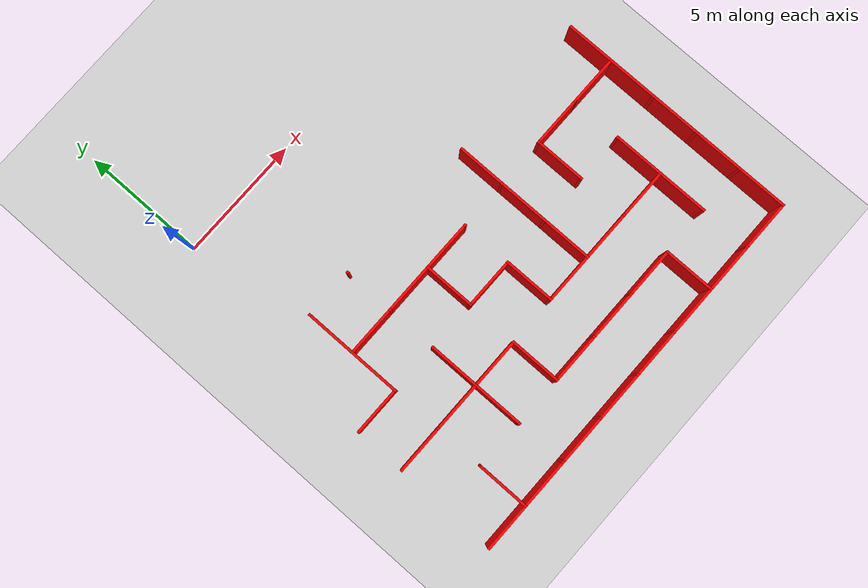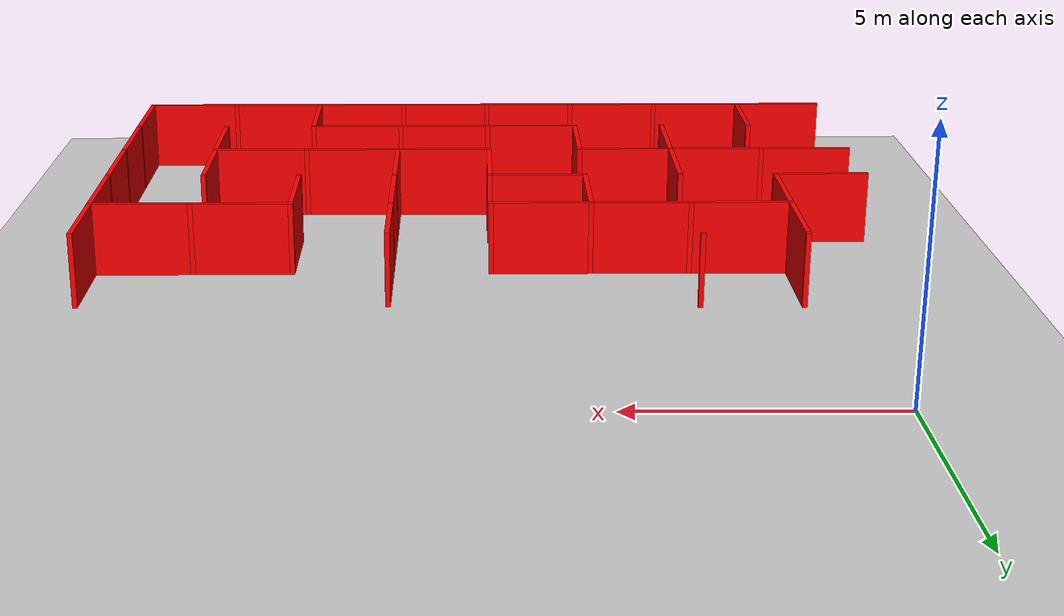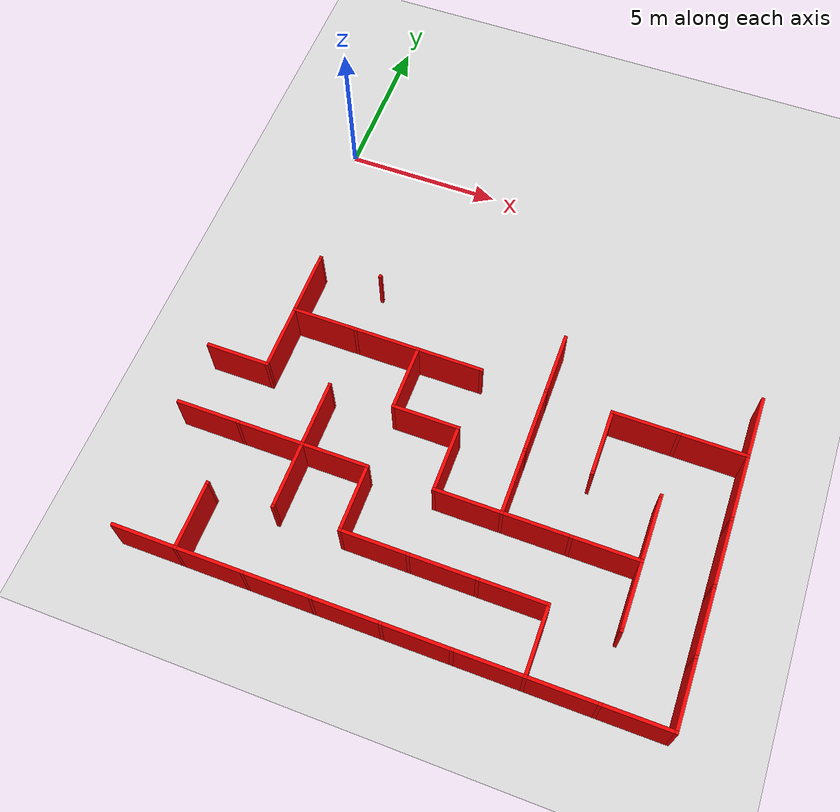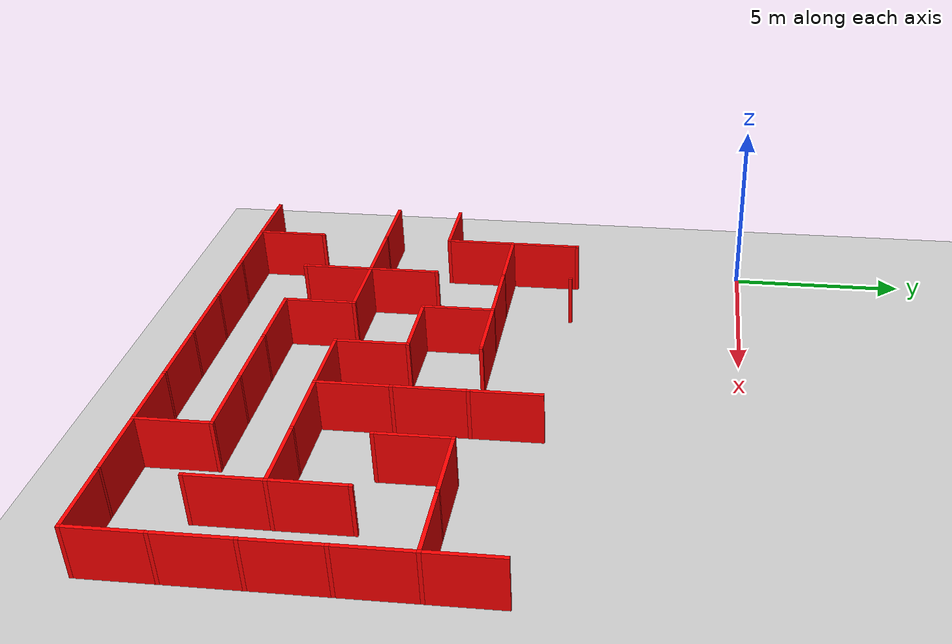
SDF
<sdf version="1.7">
 <world name="empty">
  <model name="ground_plane">
   <static>true</static>
   <link name="link">
    <collision name="collision1">
     <geometry><plane><normal>0 0 1</normal><size>1 1</size></plane></geometry>
    </collision>
    <visual name="visual1"><geometry><plane><normal>0 0 1</normal><size>100 100</size></plane></geometry></visual>
   </link>
  </model>
  <model name="Untitled">
   <link name="Wall_8_10_v">
    <collision name="Wall_0_Collision">
     <geometry><box><size>1.9 0.1 1.5</size></box></geometry>
     <pose>0 0 0.75 0 -0 0</pose>
    </collision>
    <visual name="Wall_0_Visual">
     <pose>0 0 0.75 0 -0 0</pose>
     <geometry><box><size>1.9 0.1 1.5</size></box></geometry>
     <material><ambient>1 0 0 1</ambient><diffuse>1 0 0 1</diffuse><specular>0.1 0.1 0.1 1</specular></material>
     <meta><layer>0</layer></meta>
    </visual>
    <pose>1 -6 0 0 -0 1.5708</pose>
   </link>
   <link name="Joint_1_-5">
    <collision name="Wall_2_Collision">
     <geometry><box><size>0.1 0.1 1.5</size></box></geometry>
     <pose>0 0 0.75 0 -0 0</pose>
    </collision>
    <visual name="Wall_2_Visual">
     <pose>0 0 0.75 0 -0 0</pose>
     <geometry><box><size>0.1 0.1 1.5</size></box></geometry>
     <material><ambient>1 0 0 1</ambient><diffuse>1 0 0 1</diffuse><specular>0.1 0.1 0.1 1</specular></material>
     <meta><layer>0</layer></meta>
    </visual>
    <pose>1 -5 0 0 -0 0</pose>
   </link>
   <link name="Joint_3_-5">
    <collision name="Wall_2_Collision">
     <geometry><box><size>0.1 0.1 1.5</size></box></geometry>
     <pose>0 0 0.75 0 -0 0</pose>
    </collision>
    <visual name="Wall_2_Visual">
     <pose>0 0 0.75 0 -0 0</pose>
     <geometry><box><size>0.1 0.1 1.5</size></box></geometry>
     <material><ambient>1 0 0 1</ambient><diffuse>1 0 0 1</diffuse><specular>0.1 0.1 0.1 1</specular></material>
     <meta><layer>0</layer></meta>
    </visual>
    <pose>3 -5 0 0 -0 0</pose>
   </link>
   <link name="Wall_12_10_v">
    <collision name="Wall_0_Collision">
     <geometry><box><size>1.9 0.1 1.5</size></box></geometry>
     <pose>0 0 0.75 0 -0 0</pose>
    </collision>
    <visual name="Wall_0_Visual">
     <pose>0 0 0.75 0 -0 0</pose>
     <geometry><box><size>1.9 0.1 1.5</size></box></geometry>
     <material><ambient>1 0 0 1</ambient><diffuse>1 0 0 1</diffuse><specular>0.1 0.1 0.1 1</specular></material>
     <meta><layer>0</layer></meta>
    </visual>
    <pose>9 -6 0 0 -0 1.5708</pose>
   </link>
   <link name="Wall_15_10_v">
    <collision name="Wall_0_Collision">
     <geometry><box><size>1.9 0.1 1.5</size></box></geometry>
     <pose>0 0 0.75 0 -0 0</pose>
    </collision>
    <visual name="Wall_0_Visual">
     <pose>0 0 0.75 0 -0 0</pose>
     <geometry><box><size>1.9 0.1 1.5</size></box></geometry>
     <material><ambient>1 0 0 1</ambient><diffuse>1 0 0 1</diffuse><specular>0.1 0.1 0.1 1</specular></material>
     <meta><layer>0</layer></meta>
    </visual>
    <pose>15 -6 0 0 -0 1.5708</pose>
   </link>
   <link name="Wall_8_11_h">
    <collision name="Wall_0_Collision">
     <geometry><box><size>1.9 0.1 1.5</size></box></geometry>
     <pose>0 0 0.75 0 -0 0</pose>
    </collision>
    <visual name="Wall_0_Visual">
     <pose>0 0 0.75 0 -0 0</pose>
     <geometry><box><size>1.9 0.1 1.5</size></box></geometry>
     <material><ambient>1 0 0 1</ambient><diffuse>1 0 0 1</diffuse><specular>0.1 0.1 0.1 1</specular></material>
     <meta><layer>0</layer></meta>
    </visual>
    <pose>2 -7 0 0 -0 0</pose>
   </link>
   <link name="Wall_8_11_v">
    <collision name="Wall_0_Collision">
     <geometry><box><size>1.9 0.1 1.5</size></box></geometry>
     <pose>0 0 0.75 0 -0 0</pose>
    </collision>
    <visual name="Wall_0_Visual">
     <pose>0 0 0.75 0 -0 0</pose>
     <geometry><box><size>1.9 0.1 1.5</size></box></geometry>
     <material><ambient>1 0 0 1</ambient><diffuse>1 0 0 1</diffuse><specular>0.1 0.1 0.1 1</specular></material>
     <meta><layer>0</layer></meta>
    </visual>
    <pose>1 -8 0 0 -0 1.5708</pose>
   </link>
   <link name="Joint_1_-7">
    <collision name="Wall_2_Collision">
     <geometry><box><size>0.1 0.1 1.5</size></box></geometry>
     <pose>0 0 0.75 0 -0 0</pose>
    </collision>
    <visual name="Wall_2_Visual">
     <pose>0 0 0.75 0 -0 0</pose>
     <geometry><box><size>0.1 0.1 1.5</size></box></geometry>
     <material><ambient>1 0 0 1</ambient><diffuse>1 0 0 1</diffuse><specular>0.1 0.1 0.1 1</specular></material>
     <meta><layer>0</layer></meta>
    </visual>
    <pose>1 -7 0 0 -0 0</pose>
   </link>
   <link name="Wall_9_11_h">
    <collision name="Wall_0_Collision">
     <geometry><box><size>1.9 0.1 1.5</size></box></geometry>
     <pose>0 0 0.75 0 -0 0</pose>
    </collision>
    <visual name="Wall_0_Visual">
     <pose>0 0 0.75 0 -0 0</pose>
     <geometry><box><size>1.9 0.1 1.5</size></box></geometry>
     <material><ambient>1 0 0 1</ambient><diffuse>1 0 0 1</diffuse><specular>0.1 0.1 0.1 1</specular></material>
     <meta><layer>0</layer></meta>
    </visual>
    <pose>4 -7 0 0 -0 0</pose>
   </link>
   <link name="Joint_3_-7">
    <collision name="Wall_2_Collision">
     <geometry><box><size>0.1 0.1 1.5</size></box></geometry>
     <pose>0 0 0.75 0 -0 0</pose>
    </collision>
    <visual name="Wall_2_Visual">
     <pose>0 0 0.75 0 -0 0</pose>
     <geometry><box><size>0.1 0.1 1.5</size></box></geometry>
     <material><ambient>1 0 0 1</ambient><diffuse>1 0 0 1</diffuse><specular>0.1 0.1 0.1 1</specular></material>
     <meta><layer>0</layer></meta>
    </visual>
    <pose>3 -7 0 0 -0 0</pose>
   </link>
   <link name="Wall_10_11_h">
    <collision name="Wall_0_Collision">
     <geometry><box><size>1.9 0.1 1.5</size></box></geometry>
     <pose>0 0 0.75 0 -0 0</pose>
    </collision>
    <visual name="Wall_0_Visual">
     <pose>0 0 0.75 0 -0 0</pose>
     <geometry><box><size>1.9 0.1 1.5</size></box></geometry>
     <material><ambient>1 0 0 1</ambient><diffuse>1 0 0 1</diffuse><specular>0.1 0.1 0.1 1</specular></material>
     <meta><layer>0</layer></meta>
    </visual>
    <pose>6 -7 0 0 -0 0</pose>
   </link>
   <link name="Wall_10_11_v">
    <collision name="Wall_0_Collision">
     <geometry><box><size>1.9 0.1 1.5</size></box></geometry>
     <pose>0 0 0.75 0 -0 0</pose>
    </collision>
    <visual name="Wall_0_Visual">
     <pose>0 0 0.75 0 -0 0</pose>
     <geometry><box><size>1.9 0.1 1.5</size></box></geometry>
     <material><ambient>1 0 0 1</ambient><diffuse>1 0 0 1</diffuse><specular>0.1 0.1 0.1 1</specular></material>
     <meta><layer>0</layer></meta>
    </visual>
    <pose>5 -8 0 0 -0 1.5708</pose>
   </link>
   <link name="Joint_5_-7">
    <collision name="Wall_2_Collision">
     <geometry><box><size>0.1 0.1 1.5</size></box></geometry>
     <pose>0 0 0.75 0 -0 0</pose>
    </collision>
    <visual name="Wall_2_Visual">
     <pose>0 0 0.75 0 -0 0</pose>
     <geometry><box><size>0.1 0.1 1.5</size></box></geometry>
     <material><ambient>1 0 0 1</ambient><diffuse>1 0 0 1</diffuse><specular>0.1 0.1 0.1 1</specular></material>
     <meta><layer>0</layer></meta>
    </visual>
    <pose>5 -7 0 0 -0 0</pose>
   </link>
   <link name="Joint_7_-7">
    <collision name="Wall_2_Collision">
     <geometry><box><size>0.1 0.1 1.5</size></box></geometry>
     <pose>0 0 0.75 0 -0 0</pose>
    </collision>
    <visual name="Wall_2_Visual">
     <pose>0 0 0.75 0 -0 0</pose>
     <geometry><box><size>0.1 0.1 1.5</size></box></geometry>
     <material><ambient>1 0 0 1</ambient><diffuse>1 0 0 1</diffuse><specular>0.1 0.1 0.1 1</specular></material>
     <meta><layer>0</layer></meta>
    </visual>
    <pose>7 -7 0 0 -0 0</pose>
   </link>
   <link name="Wall_12_11_v">
    <collision name="Wall_0_Collision">
     <geometry><box><size>1.9 0.1 1.5</size></box></geometry>
     <pose>0 0 0.75 0 -0 0</pose>
    </collision>
    <visual name="Wall_0_Visual">
     <pose>0 0 0.75 0 -0 0</pose>
     <geometry><box><size>1.9 0.1 1.5</size></box></geometry>
     <material><ambient>1 0 0 1</ambient><diffuse>1 0 0 1</diffuse><specular>0.1 0.1 0.1 1</specular></material>
     <meta><layer>0</layer></meta>
    </visual>
    <pose>9 -8 0 0 -0 1.5708</pose>
   </link>
   <link name="Joint_9_-7">
    <collision name="Wall_2_Collision">
     <geometry><box><size>0.1 0.1 1.5</size></box></geometry>
     <pose>0 0 0.75 0 -0 0</pose>
    </collision>
    <visual name="Wall_2_Visual">
     <pose>0 0 0.75 0 -0 0</pose>
     <geometry><box><size>0.1 0.1 1.5</size></box></geometry>
     <material><ambient>1 0 0 1</ambient><diffuse>1 0 0 1</diffuse><specular>0.1 0.1 0.1 1</specular></material>
     <meta><layer>0</layer></meta>
    </visual>
    <pose>9 -7 0 0 -0 0</pose>
   </link>
   <link name="Wall_13_11_h">
    <collision name="Wall_0_Collision">
     <geometry><box><size>1.9 0.1 1.5</size></box></geometry>
     <pose>0 0 0.75 0 -0 0</pose>
    </collision>
    <visual name="Wall_0_Visual">
     <pose>0 0 0.75 0 -0 0</pose>
     <geometry><box><size>1.9 0.1 1.5</size></box></geometry>
     <material><ambient>1 0 0 1</ambient><diffuse>1 0 0 1</diffuse><specular>0.1 0.1 0.1 1</specular></material>
     <meta><layer>0</layer></meta>
    </visual>
    <pose>12 -7 0 0 -0 0</pose>
   </link>
   <link name="Wall_13_11_v">
    <collision name="Wall_0_Collision">
     <geometry><box><size>1.9 0.1 1.5</size></box></geometry>
     <pose>0 0 0.75 0 -0 0</pose>
    </collision>
    <visual name="Wall_0_Visual">
     <pose>0 0 0.75 0 -0 0</pose>
     <geometry><box><size>1.9 0.1 1.5</size></box></geometry>
     <material><ambient>1 0 0 1</ambient><diffuse>1 0 0 1</diffuse><specular>0.1 0.1 0.1 1</specular></material>
     <meta><layer>0</layer></meta>
    </visual>
    <pose>11 -8 0 0 -0 1.5708</pose>
   </link>
   <link name="Joint_11_-7">
    <collision name="Wall_2_Collision">
     <geometry><box><size>0.1 0.1 1.5</size></box></geometry>
     <pose>0 0 0.75 0 -0 0</pose>
    </collision>
    <visual name="Wall_2_Visual">
     <pose>0 0 0.75 0 -0 0</pose>
     <geometry><box><size>0.1 0.1 1.5</size></box></geometry>
     <material><ambient>1 0 0 1</ambient><diffuse>1 0 0 1</diffuse><specular>0.1 0.1 0.1 1</specular></material>
     <meta><layer>0</layer></meta>
    </visual>
    <pose>11 -7 0 0 -0 0</pose>
   </link>
   <link name="Wall_14_11_h">
    <collision name="Wall_0_Collision">
     <geometry><box><size>1.9 0.1 1.5</size></box></geometry>
     <pose>0 0 0.75 0 -0 0</pose>
    </collision>
    <visual name="Wall_0_Visual">
     <pose>0 0 0.75 0 -0 0</pose>
     <geometry><box><size>1.9 0.1 1.5</size></box></geometry>
     <material><ambient>1 0 0 1</ambient><diffuse>1 0 0 1</diffuse><specular>0.1 0.1 0.1 1</specular></material>
     <meta><layer>0</layer></meta>
    </visual>
    <pose>14 -7 0 0 -0 0</pose>
   </link>
   <link name="Joint_13_-7">
    <collision name="Wall_2_Collision">
     <geometry><box><size>0.1 0.1 1.5</size></box></geometry>
     <pose>0 0 0.75 0 -0 0</pose>
    </collision>
    <visual name="Wall_2_Visual">
     <pose>0 0 0.75 0 -0 0</pose>
     <geometry><box><size>0.1 0.1 1.5</size></box></geometry>
     <material><ambient>1 0 0 1</ambient><diffuse>1 0 0 1</diffuse><specular>0.1 0.1 0.1 1</specular></material>
     <meta><layer>0</layer></meta>
    </visual>
    <pose>13 -7 0 0 -0 0</pose>
   </link>
   <link name="Wall_15_11_v">
    <collision name="Wall_0_Collision">
     <geometry><box><size>1.9 0.1 1.5</size></box></geometry>
     <pose>0 0 0.75 0 -0 0</pose>
    </collision>
    <visual name="Wall_0_Visual">
     <pose>0 0 0.75 0 -0 0</pose>
     <geometry><box><size>1.9 0.1 1.5</size></box></geometry>
     <material><ambient>1 0 0 1</ambient><diffuse>1 0 0 1</diffuse><specular>0.1 0.1 0.1 1</specular></material>
     <meta><layer>0</layer></meta>
    </visual>
    <pose>15 -8 0 0 -0 1.5708</pose>
   </link>
   <link name="Joint_15_-7">
    <collision name="Wall_2_Collision">
     <geometry><box><size>0.1 0.1 1.5</size></box></geometry>
     <pose>0 0 0.75 0 -0 0</pose>
    </collision>
    <visual name="Wall_2_Visual">
     <pose>0 0 0.75 0 -0 0</pose>
     <geometry><box><size>0.1 0.1 1.5</size></box></geometry>
     <material><ambient>1 0 0 1</ambient><diffuse>1 0 0 1</diffuse><specular>0.1 0.1 0.1 1</specular></material>
     <meta><layer>0</layer></meta>
    </visual>
    <pose>15 -7 0 0 -0 0</pose>
   </link>
   <link name="Wall_7_12_h">
    <collision name="Wall_0_Collision">
     <geometry><box><size>1.9 0.1 1.5</size></box></geometry>
     <pose>0 0 0.75 0 -0 0</pose>
    </collision>
    <visual name="Wall_0_Visual">
     <pose>0 0 0.75 0 -0 0</pose>
     <geometry><box><size>1.9 0.1 1.5</size></box></geometry>
     <material><ambient>1 0 0 1</ambient><diffuse>1 0 0 1</diffuse><specular>0.1 0.1 0.1 1</specular></material>
     <meta><layer>0</layer></meta>
    </visual>
    <pose>0 -9 0 0 -0 0</pose>
   </link>
   <link name="Joint_1_-9">
    <collision name="Wall_2_Collision">
     <geometry><box><size>0.1 0.1 1.5</size></box></geometry>
     <pose>0 0 0.75 0 -0 0</pose>
    </collision>
    <visual name="Wall_2_Visual">
     <pose>0 0 0.75 0 -0 0</pose>
     <geometry><box><size>0.1 0.1 1.5</size></box></geometry>
     <material><ambient>1 0 0 1</ambient><diffuse>1 0 0 1</diffuse><specular>0.1 0.1 0.1 1</specular></material>
     <meta><layer>0</layer></meta>
    </visual>
    <pose>1 -9 0 0 -0 0</pose>
   </link>
   <link name="Wall_9_12_v">
    <collision name="Wall_0_Collision">
     <geometry><box><size>1.9 0.1 1.5</size></box></geometry>
     <pose>0 0 0.75 0 -0 0</pose>
    </collision>
    <visual name="Wall_0_Visual">
     <pose>0 0 0.75 0 -0 0</pose>
     <geometry><box><size>1.9 0.1 1.5</size></box></geometry>
     <material><ambient>1 0 0 1</ambient><diffuse>1 0 0 1</diffuse><specular>0.1 0.1 0.1 1</specular></material>
     <meta><layer>0</layer></meta>
    </visual>
    <pose>3 -10 0 0 -0 1.5708</pose>
   </link>
   <link name="Joint_3_-9">
    <collision name="Wall_2_Collision">
     <geometry><box><size>0.1 0.1 1.5</size></box></geometry>
     <pose>0 0 0.75 0 -0 0</pose>
    </collision>
    <visual name="Wall_2_Visual">
     <pose>0 0 0.75 0 -0 0</pose>
     <geometry><box><size>0.1 0.1 1.5</size></box></geometry>
     <material><ambient>1 0 0 1</ambient><diffuse>1 0 0 1</diffuse><specular>0.1 0.1 0.1 1</specular></material>
     <meta><layer>0</layer></meta>
    </visual>
    <pose>3 -9 0 0 -0 0</pose>
   </link>
   <link name="Wall_10_12_h">
    <collision name="Wall_0_Collision">
     <geometry><box><size>1.9 0.1 1.5</size></box></geometry>
     <pose>0 0 0.75 0 -0 0</pose>
    </collision>
    <visual name="Wall_0_Visual">
     <pose>0 0 0.75 0 -0 0</pose>
     <geometry><box><size>1.9 0.1 1.5</size></box></geometry>
     <material><ambient>1 0 0 1</ambient><diffuse>1 0 0 1</diffuse><specular>0.1 0.1 0.1 1</specular></material>
     <meta><layer>0</layer></meta>
    </visual>
    <pose>6 -9 0 0 -0 0</pose>
   </link>
   <link name="Joint_5_-9">
    <collision name="Wall_2_Collision">
     <geometry><box><size>0.1 0.1 1.5</size></box></geometry>
     <pose>0 0 0.75 0 -0 0</pose>
    </collision>
    <visual name="Wall_2_Visual">
     <pose>0 0 0.75 0 -0 0</pose>
     <geometry><box><size>0.1 0.1 1.5</size></box></geometry>
     <material><ambient>1 0 0 1</ambient><diffuse>1 0 0 1</diffuse><specular>0.1 0.1 0.1 1</specular></material>
     <meta><layer>0</layer></meta>
    </visual>
    <pose>5 -9 0 0 -0 0</pose>
   </link>
   <link name="Wall_11_12_v">
    <collision name="Wall_0_Collision">
     <geometry><box><size>1.9 0.1 1.5</size></box></geometry>
     <pose>0 0 0.75 0 -0 0</pose>
    </collision>
    <visual name="Wall_0_Visual">
     <pose>0 0 0.75 0 -0 0</pose>
     <geometry><box><size>1.9 0.1 1.5</size></box></geometry>
     <material><ambient>1 0 0 1</ambient><diffuse>1 0 0 1</diffuse><specular>0.1 0.1 0.1 1</specular></material>
     <meta><layer>0</layer></meta>
    </visual>
    <pose>7 -10 0 0 -0 1.5708</pose>
   </link>
   <link name="Joint_7_-9">
    <collision name="Wall_2_Collision">
     <geometry><box><size>0.1 0.1 1.5</size></box></geometry>
     <pose>0 0 0.75 0 -0 0</pose>
    </collision>
    <visual name="Wall_2_Visual">
     <pose>0 0 0.75 0 -0 0</pose>
     <geometry><box><size>0.1 0.1 1.5</size></box></geometry>
     <material><ambient>1 0 0 1</ambient><diffuse>1 0 0 1</diffuse><specular>0.1 0.1 0.1 1</specular></material>
     <meta><layer>0</layer></meta>
    </visual>
    <pose>7 -9 0 0 -0 0</pose>
   </link>
   <link name="Wall_12_12_v">
    <collision name="Wall_0_Collision">
     <geometry><box><size>1.9 0.1 1.5</size></box></geometry>
     <pose>0 0 0.75 0 -0 0</pose>
    </collision>
    <visual name="Wall_0_Visual">
     <pose>0 0 0.75 0 -0 0</pose>
     <geometry><box><size>1.9 0.1 1.5</size></box></geometry>
     <material><ambient>1 0 0 1</ambient><diffuse>1 0 0 1</diffuse><specular>0.1 0.1 0.1 1</specular></material>
     <meta><layer>0</layer></meta>
    </visual>
    <pose>9 -10 0 0 -0 1.5708</pose>
   </link>
   <link name="Joint_9_-9">
    <collision name="Wall_2_Collision">
     <geometry><box><size>0.1 0.1 1.5</size></box></geometry>
     <pose>0 0 0.75 0 -0 0</pose>
    </collision>
    <visual name="Wall_2_Visual">
     <pose>0 0 0.75 0 -0 0</pose>
     <geometry><box><size>0.1 0.1 1.5</size></box></geometry>
     <material><ambient>1 0 0 1</ambient><diffuse>1 0 0 1</diffuse><specular>0.1 0.1 0.1 1</specular></material>
     <meta><layer>0</layer></meta>
    </visual>
    <pose>9 -9 0 0 -0 0</pose>
   </link>
   <link name="Joint_11_-9">
    <collision name="Wall_2_Collision">
     <geometry><box><size>0.1 0.1 1.5</size></box></geometry>
     <pose>0 0 0.75 0 -0 0</pose>
    </collision>
    <visual name="Wall_2_Visual">
     <pose>0 0 0.75 0 -0 0</pose>
     <geometry><box><size>0.1 0.1 1.5</size></box></geometry>
     <material><ambient>1 0 0 1</ambient><diffuse>1 0 0 1</diffuse><specular>0.1 0.1 0.1 1</specular></material>
     <meta><layer>0</layer></meta>
    </visual>
    <pose>11 -9 0 0 -0 0</pose>
   </link>
   <link name="Wall_14_12_v">
    <collision name="Wall_0_Collision">
     <geometry><box><size>1.9 0.1 1.5</size></box></geometry>
     <pose>0 0 0.75 0 -0 0</pose>
    </collision>
    <visual name="Wall_0_Visual">
     <pose>0 0 0.75 0 -0 0</pose>
     <geometry><box><size>1.9 0.1 1.5</size></box></geometry>
     <material><ambient>1 0 0 1</ambient><diffuse>1 0 0 1</diffuse><specular>0.1 0.1 0.1 1</specular></material>
     <meta><layer>0</layer></meta>
    </visual>
    <pose>13 -10 0 0 -0 1.5708</pose>
   </link>
   <link name="Joint_13_-9">
    <collision name="Wall_2_Collision">
     <geometry><box><size>0.1 0.1 1.5</size></box></geometry>
     <pose>0 0 0.75 0 -0 0</pose>
    </collision>
    <visual name="Wall_2_Visual">
     <pose>0 0 0.75 0 -0 0</pose>
     <geometry><box><size>0.1 0.1 1.5</size></box></geometry>
     <material><ambient>1 0 0 1</ambient><diffuse>1 0 0 1</diffuse><specular>0.1 0.1 0.1 1</specular></material>
     <meta><layer>0</layer></meta>
    </visual>
    <pose>13 -9 0 0 -0 0</pose>
   </link>
   <link name="Wall_15_12_v">
    <collision name="Wall_0_Collision">
     <geometry><box><size>1.9 0.1 1.5</size></box></geometry>
     <pose>0 0 0.75 0 -0 0</pose>
    </collision>
    <visual name="Wall_0_Visual">
     <pose>0 0 0.75 0 -0 0</pose>
     <geometry><box><size>1.9 0.1 1.5</size></box></geometry>
     <material><ambient>1 0 0 1</ambient><diffuse>1 0 0 1</diffuse><specular>0.1 0.1 0.1 1</specular></material>
     <meta><layer>0</layer></meta>
    </visual>
    <pose>15 -10 0 0 -0 1.5708</pose>
   </link>
   <link name="Joint_15_-9">
    <collision name="Wall_2_Collision">
     <geometry><box><size>0.1 0.1 1.5</size></box></geometry>
     <pose>0 0 0.75 0 -0 0</pose>
    </collision>
    <visual name="Wall_2_Visual">
     <pose>0 0 0.75 0 -0 0</pose>
     <geometry><box><size>0.1 0.1 1.5</size></box></geometry>
     <material><ambient>1 0 0 1</ambient><diffuse>1 0 0 1</diffuse><specular>0.1 0.1 0.1 1</specular></material>
     <meta><layer>0</layer></meta>
    </visual>
    <pose>15 -9 0 0 -0 0</pose>
   </link>
   <link name="Wall_7_13_h">
    <collision name="Wall_0_Collision">
     <geometry><box><size>1.9 0.1 1.5</size></box></geometry>
     <pose>0 0 0.75 0 -0 0</pose>
    </collision>
    <visual name="Wall_0_Visual">
     <pose>0 0 0.75 0 -0 0</pose>
     <geometry><box><size>1.9 0.1 1.5</size></box></geometry>
     <material><ambient>1 0 0 1</ambient><diffuse>1 0 0 1</diffuse><specular>0.1 0.1 0.1 1</specular></material>
     <meta><layer>0</layer></meta>
    </visual>
    <pose>0 -11 0 0 -0 0</pose>
   </link>
   <link name="Wall_8_13_h">
    <collision name="Wall_0_Collision">
     <geometry><box><size>1.9 0.1 1.5</size></box></geometry>
     <pose>0 0 0.75 0 -0 0</pose>
    </collision>
    <visual name="Wall_0_Visual">
     <pose>0 0 0.75 0 -0 0</pose>
     <geometry><box><size>1.9 0.1 1.5</size></box></geometry>
     <material><ambient>1 0 0 1</ambient><diffuse>1 0 0 1</diffuse><specular>0.1 0.1 0.1 1</specular></material>
     <meta><layer>0</layer></meta>
    </visual>
    <pose>2 -11 0 0 -0 0</pose>
   </link>
   <link name="Joint_1_-11">
    <collision name="Wall_2_Collision">
     <geometry><box><size>0.1 0.1 1.5</size></box></geometry>
     <pose>0 0 0.75 0 -0 0</pose>
    </collision>
    <visual name="Wall_2_Visual">
     <pose>0 0 0.75 0 -0 0</pose>
     <geometry><box><size>0.1 0.1 1.5</size></box></geometry>
     <material><ambient>1 0 0 1</ambient><diffuse>1 0 0 1</diffuse><specular>0.1 0.1 0.1 1</specular></material>
     <meta><layer>0</layer></meta>
    </visual>
    <pose>1 -11 0 0 -0 0</pose>
   </link>
   <link name="Wall_9_13_h">
    <collision name="Wall_0_Collision">
     <geometry><box><size>1.9 0.1 1.5</size></box></geometry>
     <pose>0 0 0.75 0 -0 0</pose>
    </collision>
    <visual name="Wall_0_Visual">
     <pose>0 0 0.75 0 -0 0</pose>
     <geometry><box><size>1.9 0.1 1.5</size></box></geometry>
     <material><ambient>1 0 0 1</ambient><diffuse>1 0 0 1</diffuse><specular>0.1 0.1 0.1 1</specular></material>
     <meta><layer>0</layer></meta>
    </visual>
    <pose>4 -11 0 0 -0 0</pose>
   </link>
   <link name="Wall_9_13_v">
    <collision name="Wall_0_Collision">
     <geometry><box><size>1.9 0.1 1.5</size></box></geometry>
     <pose>0 0 0.75 0 -0 0</pose>
    </collision>
    <visual name="Wall_0_Visual">
     <pose>0 0 0.75 0 -0 0</pose>
     <geometry><box><size>1.9 0.1 1.5</size></box></geometry>
     <material><ambient>1 0 0 1</ambient><diffuse>1 0 0 1</diffuse><specular>0.1 0.1 0.1 1</specular></material>
     <meta><layer>0</layer></meta>
    </visual>
    <pose>3 -12 0 0 -0 1.5708</pose>
   </link>
   <link name="Joint_3_-11">
    <collision name="Wall_2_Collision">
     <geometry><box><size>0.1 0.1 1.5</size></box></geometry>
     <pose>0 0 0.75 0 -0 0</pose>
    </collision>
    <visual name="Wall_2_Visual">
     <pose>0 0 0.75 0 -0 0</pose>
     <geometry><box><size>0.1 0.1 1.5</size></box></geometry>
     <material><ambient>1 0 0 1</ambient><diffuse>1 0 0 1</diffuse><specular>0.1 0.1 0.1 1</specular></material>
     <meta><layer>0</layer></meta>
    </visual>
    <pose>3 -11 0 0 -0 0</pose>
   </link>
   <link name="Wall_10_13_v">
    <collision name="Wall_0_Collision">
     <geometry><box><size>1.9 0.1 1.5</size></box></geometry>
     <pose>0 0 0.75 0 -0 0</pose>
    </collision>
    <visual name="Wall_0_Visual">
     <pose>0 0 0.75 0 -0 0</pose>
     <geometry><box><size>1.9 0.1 1.5</size></box></geometry>
     <material><ambient>1 0 0 1</ambient><diffuse>1 0 0 1</diffuse><specular>0.1 0.1 0.1 1</specular></material>
     <meta><layer>0</layer></meta>
    </visual>
    <pose>5 -12 0 0 -0 1.5708</pose>
   </link>
   <link name="Joint_5_-11">
    <collision name="Wall_2_Collision">
     <geometry><box><size>0.1 0.1 1.5</size></box></geometry>
     <pose>0 0 0.75 0 -0 0</pose>
    </collision>
    <visual name="Wall_2_Visual">
     <pose>0 0 0.75 0 -0 0</pose>
     <geometry><box><size>0.1 0.1 1.5</size></box></geometry>
     <material><ambient>1 0 0 1</ambient><diffuse>1 0 0 1</diffuse><specular>0.1 0.1 0.1 1</specular></material>
     <meta><layer>0</layer></meta>
    </visual>
    <pose>5 -11 0 0 -0 0</pose>
   </link>
   <link name="Wall_11_13_h">
    <collision name="Wall_0_Collision">
     <geometry><box><size>1.9 0.1 1.5</size></box></geometry>
     <pose>0 0 0.75 0 -0 0</pose>
    </collision>
    <visual name="Wall_0_Visual">
     <pose>0 0 0.75 0 -0 0</pose>
     <geometry><box><size>1.9 0.1 1.5</size></box></geometry>
     <material><ambient>1 0 0 1</ambient><diffuse>1 0 0 1</diffuse><specular>0.1 0.1 0.1 1</specular></material>
     <meta><layer>0</layer></meta>
    </visual>
    <pose>8 -11 0 0 -0 0</pose>
   </link>
   <link name="Joint_7_-11">
    <collision name="Wall_2_Collision">
     <geometry><box><size>0.1 0.1 1.5</size></box></geometry>
     <pose>0 0 0.75 0 -0 0</pose>
    </collision>
    <visual name="Wall_2_Visual">
     <pose>0 0 0.75 0 -0 0</pose>
     <geometry><box><size>0.1 0.1 1.5</size></box></geometry>
     <material><ambient>1 0 0 1</ambient><diffuse>1 0 0 1</diffuse><specular>0.1 0.1 0.1 1</specular></material>
     <meta><layer>0</layer></meta>
    </visual>
    <pose>7 -11 0 0 -0 0</pose>
   </link>
   <link name="Wall_12_13_h">
    <collision name="Wall_0_Collision">
     <geometry><box><size>1.9 0.1 1.5</size></box></geometry>
     <pose>0 0 0.75 0 -0 0</pose>
    </collision>
    <visual name="Wall_0_Visual">
     <pose>0 0 0.75 0 -0 0</pose>
     <geometry><box><size>1.9 0.1 1.5</size></box></geometry>
     <material><ambient>1 0 0 1</ambient><diffuse>1 0 0 1</diffuse><specular>0.1 0.1 0.1 1</specular></material>
     <meta><layer>0</layer></meta>
    </visual>
    <pose>10 -11 0 0 -0 0</pose>
   </link>
   <link name="Joint_9_-11">
    <collision name="Wall_2_Collision">
     <geometry><box><size>0.1 0.1 1.5</size></box></geometry>
     <pose>0 0 0.75 0 -0 0</pose>
    </collision>
    <visual name="Wall_2_Visual">
     <pose>0 0 0.75 0 -0 0</pose>
     <geometry><box><size>0.1 0.1 1.5</size></box></geometry>
     <material><ambient>1 0 0 1</ambient><diffuse>1 0 0 1</diffuse><specular>0.1 0.1 0.1 1</specular></material>
     <meta><layer>0</layer></meta>
    </visual>
    <pose>9 -11 0 0 -0 0</pose>
   </link>
   <link name="Wall_13_13_h">
    <collision name="Wall_0_Collision">
     <geometry><box><size>1.9 0.1 1.5</size></box></geometry>
     <pose>0 0 0.75 0 -0 0</pose>
    </collision>
    <visual name="Wall_0_Visual">
     <pose>0 0 0.75 0 -0 0</pose>
     <geometry><box><size>1.9 0.1 1.5</size></box></geometry>
     <material><ambient>1 0 0 1</ambient><diffuse>1 0 0 1</diffuse><specular>0.1 0.1 0.1 1</specular></material>
     <meta><layer>0</layer></meta>
    </visual>
    <pose>12 -11 0 0 -0 0</pose>
   </link>
   <link name="Joint_11_-11">
    <collision name="Wall_2_Collision">
     <geometry><box><size>0.1 0.1 1.5</size></box></geometry>
     <pose>0 0 0.75 0 -0 0</pose>
    </collision>
    <visual name="Wall_2_Visual">
     <pose>0 0 0.75 0 -0 0</pose>
     <geometry><box><size>0.1 0.1 1.5</size></box></geometry>
     <material><ambient>1 0 0 1</ambient><diffuse>1 0 0 1</diffuse><specular>0.1 0.1 0.1 1</specular></material>
     <meta><layer>0</layer></meta>
    </visual>
    <pose>11 -11 0 0 -0 0</pose>
   </link>
   <link name="Wall_14_13_v">
    <collision name="Wall_0_Collision">
     <geometry><box><size>1.9 0.1 1.5</size></box></geometry>
     <pose>0 0 0.75 0 -0 0</pose>
    </collision>
    <visual name="Wall_0_Visual">
     <pose>0 0 0.75 0 -0 0</pose>
     <geometry><box><size>1.9 0.1 1.5</size></box></geometry>
     <material><ambient>1 0 0 1</ambient><diffuse>1 0 0 1</diffuse><specular>0.1 0.1 0.1 1</specular></material>
     <meta><layer>0</layer></meta>
    </visual>
    <pose>13 -12 0 0 -0 1.5708</pose>
   </link>
   <link name="Joint_13_-11">
    <collision name="Wall_2_Collision">
     <geometry><box><size>0.1 0.1 1.5</size></box></geometry>
     <pose>0 0 0.75 0 -0 0</pose>
    </collision>
    <visual name="Wall_2_Visual">
     <pose>0 0 0.75 0 -0 0</pose>
     <geometry><box><size>0.1 0.1 1.5</size></box></geometry>
     <material><ambient>1 0 0 1</ambient><diffuse>1 0 0 1</diffuse><specular>0.1 0.1 0.1 1</specular></material>
     <meta><layer>0</layer></meta>
    </visual>
    <pose>13 -11 0 0 -0 0</pose>
   </link>
   <link name="Wall_15_13_v">
    <collision name="Wall_0_Collision">
     <geometry><box><size>1.9 0.1 1.5</size></box></geometry>
     <pose>0 0 0.75 0 -0 0</pose>
    </collision>
    <visual name="Wall_0_Visual">
     <pose>0 0 0.75 0 -0 0</pose>
     <geometry><box><size>1.9 0.1 1.5</size></box></geometry>
     <material><ambient>1 0 0 1</ambient><diffuse>1 0 0 1</diffuse><specular>0.1 0.1 0.1 1</specular></material>
     <meta><layer>0</layer></meta>
    </visual>
    <pose>15 -12 0 0 -0 1.5708</pose>
   </link>
   <link name="Joint_15_-11">
    <collision name="Wall_2_Collision">
     <geometry><box><size>0.1 0.1 1.5</size></box></geometry>
     <pose>0 0 0.75 0 -0 0</pose>
    </collision>
    <visual name="Wall_2_Visual">
     <pose>0 0 0.75 0 -0 0</pose>
     <geometry><box><size>0.1 0.1 1.5</size></box></geometry>
     <material><ambient>1 0 0 1</ambient><diffuse>1 0 0 1</diffuse><specular>0.1 0.1 0.1 1</specular></material>
     <meta><layer>0</layer></meta>
    </visual>
    <pose>15 -11 0 0 -0 0</pose>
   </link>
   <link name="Wall_7_15_h">
    <collision name="Wall_0_Collision">
     <geometry><box><size>1.9 0.1 1.5</size></box></geometry>
     <pose>0 0 0.75 0 -0 0</pose>
    </collision>
    <visual name="Wall_0_Visual">
     <pose>0 0 0.75 0 -0 0</pose>
     <geometry><box><size>1.9 0.1 1.5</size></box></geometry>
     <material><ambient>1 0 0 1</ambient><diffuse>1 0 0 1</diffuse><specular>0.1 0.1 0.1 1</specular></material>
     <meta><layer>0</layer></meta>
    </visual>
    <pose>0 -15 0 0 -0 0</pose>
   </link>
   <link name="Wall_8_14_v">
    <collision name="Wall_0_Collision">
     <geometry><box><size>1.9 0.1 1.5</size></box></geometry>
     <pose>0 0 0.75 0 -0 0</pose>
    </collision>
    <visual name="Wall_0_Visual">
     <pose>0 0 0.75 0 -0 0</pose>
     <geometry><box><size>1.9 0.1 1.5</size></box></geometry>
     <material><ambient>1 0 0 1</ambient><diffuse>1 0 0 1</diffuse><specular>0.1 0.1 0.1 1</specular></material>
     <meta><layer>0</layer></meta>
    </visual>
    <pose>1 -14 0 0 -0 1.5708</pose>
   </link>
   <link name="Joint_1_-13">
    <collision name="Wall_2_Collision">
     <geometry><box><size>0.1 0.1 1.5</size></box></geometry>
     <pose>0 0 0.75 0 -0 0</pose>
    </collision>
    <visual name="Wall_2_Visual">
     <pose>0 0 0.75 0 -0 0</pose>
     <geometry><box><size>0.1 0.1 1.5</size></box></geometry>
     <material><ambient>1 0 0 1</ambient><diffuse>1 0 0 1</diffuse><specular>0.1 0.1 0.1 1</specular></material>
     <meta><layer>0</layer></meta>
    </visual>
    <pose>1 -13 0 0 -0 0</pose>
   </link>
   <link name="Wall_8_15_h">
    <collision name="Wall_0_Collision">
     <geometry><box><size>1.9 0.1 1.5</size></box></geometry>
     <pose>0 0 0.75 0 -0 0</pose>
    </collision>
    <visual name="Wall_0_Visual">
     <pose>0 0 0.75 0 -0 0</pose>
     <geometry><box><size>1.9 0.1 1.5</size></box></geometry>
     <material><ambient>1 0 0 1</ambient><diffuse>1 0 0 1</diffuse><specular>0.1 0.1 0.1 1</specular></material>
     <meta><layer>0</layer></meta>
    </visual>
    <pose>2 -15 0 0 -0 0</pose>
   </link>
   <link name="Joint_1_-15">
    <collision name="Wall_2_Collision">
     <geometry><box><size>0.1 0.1 1.5</size></box></geometry>
     <pose>0 0 0.75 0 -0 0</pose>
    </collision>
    <visual name="Wall_2_Visual">
     <pose>0 0 0.75 0 -0 0</pose>
     <geometry><box><size>0.1 0.1 1.5</size></box></geometry>
     <material><ambient>1 0 0 1</ambient><diffuse>1 0 0 1</diffuse><specular>0.1 0.1 0.1 1</specular></material>
     <meta><layer>0</layer></meta>
    </visual>
    <pose>1 -15 0 0 -0 0</pose>
   </link>
   <link name="Joint_3_-13">
    <collision name="Wall_2_Collision">
     <geometry><box><size>0.1 0.1 1.5</size></box></geometry>
     <pose>0 0 0.75 0 -0 0</pose>
    </collision>
    <visual name="Wall_2_Visual">
     <pose>0 0 0.75 0 -0 0</pose>
     <geometry><box><size>0.1 0.1 1.5</size></box></geometry>
     <material><ambient>1 0 0 1</ambient><diffuse>1 0 0 1</diffuse><specular>0.1 0.1 0.1 1</specular></material>
     <meta><layer>0</layer></meta>
    </visual>
    <pose>3 -13 0 0 -0 0</pose>
   </link>
   <link name="Wall_9_15_h">
    <collision name="Wall_0_Collision">
     <geometry><box><size>1.9 0.1 1.5</size></box></geometry>
     <pose>0 0 0.75 0 -0 0</pose>
    </collision>
    <visual name="Wall_0_Visual">
     <pose>0 0 0.75 0 -0 0</pose>
     <geometry><box><size>1.9 0.1 1.5</size></box></geometry>
     <material><ambient>1 0 0 1</ambient><diffuse>1 0 0 1</diffuse><specular>0.1 0.1 0.1 1</specular></material>
     <meta><layer>0</layer></meta>
    </visual>
    <pose>4 -15 0 0 -0 0</pose>
   </link>
   <link name="Joint_3_-15">
    <collision name="Wall_2_Collision">
     <geometry><box><size>0.1 0.1 1.5</size></box></geometry>
     <pose>0 0 0.75 0 -0 0</pose>
    </collision>
    <visual name="Wall_2_Visual">
     <pose>0 0 0.75 0 -0 0</pose>
     <geometry><box><size>0.1 0.1 1.5</size></box></geometry>
     <material><ambient>1 0 0 1</ambient><diffuse>1 0 0 1</diffuse><specular>0.1 0.1 0.1 1</specular></material>
     <meta><layer>0</layer></meta>
    </visual>
    <pose>3 -15 0 0 -0 0</pose>
   </link>
   <link name="Wall_10_14_h">
    <collision name="Wall_0_Collision">
     <geometry><box><size>1.9 0.1 1.5</size></box></geometry>
     <pose>0 0 0.75 0 -0 0</pose>
    </collision>
    <visual name="Wall_0_Visual">
     <pose>0 0 0.75 0 -0 0</pose>
     <geometry><box><size>1.9 0.1 1.5</size></box></geometry>
     <material><ambient>1 0 0 1</ambient><diffuse>1 0 0 1</diffuse><specular>0.1 0.1 0.1 1</specular></material>
     <meta><layer>0</layer></meta>
    </visual>
    <pose>6 -13 0 0 -0 0</pose>
   </link>
   <link name="Joint_5_-13">
    <collision name="Wall_2_Collision">
     <geometry><box><size>0.1 0.1 1.5</size></box></geometry>
     <pose>0 0 0.75 0 -0 0</pose>
    </collision>
    <visual name="Wall_2_Visual">
     <pose>0 0 0.75 0 -0 0</pose>
     <geometry><box><size>0.1 0.1 1.5</size></box></geometry>
     <material><ambient>1 0 0 1</ambient><diffuse>1 0 0 1</diffuse><specular>0.1 0.1 0.1 1</specular></material>
     <meta><layer>0</layer></meta>
    </visual>
    <pose>5 -13 0 0 -0 0</pose>
   </link>
   <link name="Wall_10_15_h">
    <collision name="Wall_0_Collision">
     <geometry><box><size>1.9 0.1 1.5</size></box></geometry>
     <pose>0 0 0.75 0 -0 0</pose>
    </collision>
    <visual name="Wall_0_Visual">
     <pose>0 0 0.75 0 -0 0</pose>
     <geometry><box><size>1.9 0.1 1.5</size></box></geometry>
     <material><ambient>1 0 0 1</ambient><diffuse>1 0 0 1</diffuse><specular>0.1 0.1 0.1 1</specular></material>
     <meta><layer>0</layer></meta>
    </visual>
    <pose>6 -15 0 0 -0 0</pose>
   </link>
   <link name="Joint_5_-15">
    <collision name="Wall_2_Collision">
     <geometry><box><size>0.1 0.1 1.5</size></box></geometry>
     <pose>0 0 0.75 0 -0 0</pose>
    </collision>
    <visual name="Wall_2_Visual">
     <pose>0 0 0.75 0 -0 0</pose>
     <geometry><box><size>0.1 0.1 1.5</size></box></geometry>
     <material><ambient>1 0 0 1</ambient><diffuse>1 0 0 1</diffuse><specular>0.1 0.1 0.1 1</specular></material>
     <meta><layer>0</layer></meta>
    </visual>
    <pose>5 -15 0 0 -0 0</pose>
   </link>
   <link name="Wall_11_14_h">
    <collision name="Wall_0_Collision">
     <geometry><box><size>1.9 0.1 1.5</size></box></geometry>
     <pose>0 0 0.75 0 -0 0</pose>
    </collision>
    <visual name="Wall_0_Visual">
     <pose>0 0 0.75 0 -0 0</pose>
     <geometry><box><size>1.9 0.1 1.5</size></box></geometry>
     <material><ambient>1 0 0 1</ambient><diffuse>1 0 0 1</diffuse><specular>0.1 0.1 0.1 1</specular></material>
     <meta><layer>0</layer></meta>
    </visual>
    <pose>8 -13 0 0 -0 0</pose>
   </link>
   <link name="Joint_7_-13">
    <collision name="Wall_2_Collision">
     <geometry><box><size>0.1 0.1 1.5</size></box></geometry>
     <pose>0 0 0.75 0 -0 0</pose>
    </collision>
    <visual name="Wall_2_Visual">
     <pose>0 0 0.75 0 -0 0</pose>
     <geometry><box><size>0.1 0.1 1.5</size></box></geometry>
     <material><ambient>1 0 0 1</ambient><diffuse>1 0 0 1</diffuse><specular>0.1 0.1 0.1 1</specular></material>
     <meta><layer>0</layer></meta>
    </visual>
    <pose>7 -13 0 0 -0 0</pose>
   </link>
   <link name="Wall_11_15_h">
    <collision name="Wall_0_Collision">
     <geometry><box><size>1.9 0.1 1.5</size></box></geometry>
     <pose>0 0 0.75 0 -0 0</pose>
    </collision>
    <visual name="Wall_0_Visual">
     <pose>0 0 0.75 0 -0 0</pose>
     <geometry><box><size>1.9 0.1 1.5</size></box></geometry>
     <material><ambient>1 0 0 1</ambient><diffuse>1 0 0 1</diffuse><specular>0.1 0.1 0.1 1</specular></material>
     <meta><layer>0</layer></meta>
    </visual>
    <pose>8 -15 0 0 -0 0</pose>
   </link>
   <link name="Joint_7_-15">
    <collision name="Wall_2_Collision">
     <geometry><box><size>0.1 0.1 1.5</size></box></geometry>
     <pose>0 0 0.75 0 -0 0</pose>
    </collision>
    <visual name="Wall_2_Visual">
     <pose>0 0 0.75 0 -0 0</pose>
     <geometry><box><size>0.1 0.1 1.5</size></box></geometry>
     <material><ambient>1 0 0 1</ambient><diffuse>1 0 0 1</diffuse><specular>0.1 0.1 0.1 1</specular></material>
     <meta><layer>0</layer></meta>
    </visual>
    <pose>7 -15 0 0 -0 0</pose>
   </link>
   <link name="Wall_12_14_h">
    <collision name="Wall_0_Collision">
     <geometry><box><size>1.9 0.1 1.5</size></box></geometry>
     <pose>0 0 0.75 0 -0 0</pose>
    </collision>
    <visual name="Wall_0_Visual">
     <pose>0 0 0.75 0 -0 0</pose>
     <geometry><box><size>1.9 0.1 1.5</size></box></geometry>
     <material><ambient>1 0 0 1</ambient><diffuse>1 0 0 1</diffuse><specular>0.1 0.1 0.1 1</specular></material>
     <meta><layer>0</layer></meta>
    </visual>
    <pose>10 -13 0 0 -0 0</pose>
   </link>
   <link name="Joint_9_-13">
    <collision name="Wall_2_Collision">
     <geometry><box><size>0.1 0.1 1.5</size></box></geometry>
     <pose>0 0 0.75 0 -0 0</pose>
    </collision>
    <visual name="Wall_2_Visual">
     <pose>0 0 0.75 0 -0 0</pose>
     <geometry><box><size>0.1 0.1 1.5</size></box></geometry>
     <material><ambient>1 0 0 1</ambient><diffuse>1 0 0 1</diffuse><specular>0.1 0.1 0.1 1</specular></material>
     <meta><layer>0</layer></meta>
    </visual>
    <pose>9 -13 0 0 -0 0</pose>
   </link>
   <link name="Wall_12_15_h">
    <collision name="Wall_0_Collision">
     <geometry><box><size>1.9 0.1 1.5</size></box></geometry>
     <pose>0 0 0.75 0 -0 0</pose>
    </collision>
    <visual name="Wall_0_Visual">
     <pose>0 0 0.75 0 -0 0</pose>
     <geometry><box><size>1.9 0.1 1.5</size></box></geometry>
     <material><ambient>1 0 0 1</ambient><diffuse>1 0 0 1</diffuse><specular>0.1 0.1 0.1 1</specular></material>
     <meta><layer>0</layer></meta>
    </visual>
    <pose>10 -15 0 0 -0 0</pose>
   </link>
   <link name="Joint_9_-15">
    <collision name="Wall_2_Collision">
     <geometry><box><size>0.1 0.1 1.5</size></box></geometry>
     <pose>0 0 0.75 0 -0 0</pose>
    </collision>
    <visual name="Wall_2_Visual">
     <pose>0 0 0.75 0 -0 0</pose>
     <geometry><box><size>0.1 0.1 1.5</size></box></geometry>
     <material><ambient>1 0 0 1</ambient><diffuse>1 0 0 1</diffuse><specular>0.1 0.1 0.1 1</specular></material>
     <meta><layer>0</layer></meta>
    </visual>
    <pose>9 -15 0 0 -0 0</pose>
   </link>
   <link name="Wall_13_14_v">
    <collision name="Wall_0_Collision">
     <geometry><box><size>1.9 0.1 1.5</size></box></geometry>
     <pose>0 0 0.75 0 -0 0</pose>
    </collision>
    <visual name="Wall_0_Visual">
     <pose>0 0 0.75 0 -0 0</pose>
     <geometry><box><size>1.9 0.1 1.5</size></box></geometry>
     <material><ambient>1 0 0 1</ambient><diffuse>1 0 0 1</diffuse><specular>0.1 0.1 0.1 1</specular></material>
     <meta><layer>0</layer></meta>
    </visual>
    <pose>11 -14 0 0 -0 1.5708</pose>
   </link>
   <link name="Joint_11_-13">
    <collision name="Wall_2_Collision">
     <geometry><box><size>0.1 0.1 1.5</size></box></geometry>
     <pose>0 0 0.75 0 -0 0</pose>
    </collision>
    <visual name="Wall_2_Visual">
     <pose>0 0 0.75 0 -0 0</pose>
     <geometry><box><size>0.1 0.1 1.5</size></box></geometry>
     <material><ambient>1 0 0 1</ambient><diffuse>1 0 0 1</diffuse><specular>0.1 0.1 0.1 1</specular></material>
     <meta><layer>0</layer></meta>
    </visual>
    <pose>11 -13 0 0 -0 0</pose>
   </link>
   <link name="Wall_13_15_h">
    <collision name="Wall_0_Collision">
     <geometry><box><size>1.9 0.1 1.5</size></box></geometry>
     <pose>0 0 0.75 0 -0 0</pose>
    </collision>
    <visual name="Wall_0_Visual">
     <pose>0 0 0.75 0 -0 0</pose>
     <geometry><box><size>1.9 0.1 1.5</size></box></geometry>
     <material><ambient>1 0 0 1</ambient><diffuse>1 0 0 1</diffuse><specular>0.1 0.1 0.1 1</specular></material>
     <meta><layer>0</layer></meta>
    </visual>
    <pose>12 -15 0 0 -0 0</pose>
   </link>
   <link name="Joint_11_-15">
    <collision name="Wall_2_Collision">
     <geometry><box><size>0.1 0.1 1.5</size></box></geometry>
     <pose>0 0 0.75 0 -0 0</pose>
    </collision>
    <visual name="Wall_2_Visual">
     <pose>0 0 0.75 0 -0 0</pose>
     <geometry><box><size>0.1 0.1 1.5</size></box></geometry>
     <material><ambient>1 0 0 1</ambient><diffuse>1 0 0 1</diffuse><specular>0.1 0.1 0.1 1</specular></material>
     <meta><layer>0</layer></meta>
    </visual>
    <pose>11 -15 0 0 -0 0</pose>
   </link>
   <link name="Joint_13_-13">
    <collision name="Wall_2_Collision">
     <geometry><box><size>0.1 0.1 1.5</size></box></geometry>
     <pose>0 0 0.75 0 -0 0</pose>
    </collision>
    <visual name="Wall_2_Visual">
     <pose>0 0 0.75 0 -0 0</pose>
     <geometry><box><size>0.1 0.1 1.5</size></box></geometry>
     <material><ambient>1 0 0 1</ambient><diffuse>1 0 0 1</diffuse><specular>0.1 0.1 0.1 1</specular></material>
     <meta><layer>0</layer></meta>
    </visual>
    <pose>13 -13 0 0 -0 0</pose>
   </link>
   <link name="Wall_14_15_h">
    <collision name="Wall_0_Collision">
     <geometry><box><size>1.9 0.1 1.5</size></box></geometry>
     <pose>0 0 0.75 0 -0 0</pose>
    </collision>
    <visual name="Wall_0_Visual">
     <pose>0 0 0.75 0 -0 0</pose>
     <geometry><box><size>1.9 0.1 1.5</size></box></geometry>
     <material><ambient>1 0 0 1</ambient><diffuse>1 0 0 1</diffuse><specular>0.1 0.1 0.1 1</specular></material>
     <meta><layer>0</layer></meta>
    </visual>
    <pose>14 -15 0 0 -0 0</pose>
   </link>
   <link name="Joint_13_-15">
    <collision name="Wall_2_Collision">
     <geometry><box><size>0.1 0.1 1.5</size></box></geometry>
     <pose>0 0 0.75 0 -0 0</pose>
    </collision>
    <visual name="Wall_2_Visual">
     <pose>0 0 0.75 0 -0 0</pose>
     <geometry><box><size>0.1 0.1 1.5</size></box></geometry>
     <material><ambient>1 0 0 1</ambient><diffuse>1 0 0 1</diffuse><specular>0.1 0.1 0.1 1</specular></material>
     <meta><layer>0</layer></meta>
    </visual>
    <pose>13 -15 0 0 -0 0</pose>
   </link>
   <link name="Wall_15_14_v">
    <collision name="Wall_0_Collision">
     <geometry><box><size>1.9 0.1 1.5</size></box></geometry>
     <pose>0 0 0.75 0 -0 0</pose>
    </collision>
    <visual name="Wall_0_Visual">
     <pose>0 0 0.75 0 -0 0</pose>
     <geometry><box><size>1.9 0.1 1.5</size></box></geometry>
     <material><ambient>1 0 0 1</ambient><diffuse>1 0 0 1</diffuse><specular>0.1 0.1 0.1 1</specular></material>
     <meta><layer>0</layer></meta>
    </visual>
    <pose>15 -14 0 0 -0 1.5708</pose>
   </link>
   <link name="Joint_15_-13">
    <collision name="Wall_2_Collision">
     <geometry><box><size>0.1 0.1 1.5</size></box></geometry>
     <pose>0 0 0.75 0 -0 0</pose>
    </collision>
    <visual name="Wall_2_Visual">
     <pose>0 0 0.75 0 -0 0</pose>
     <geometry><box><size>0.1 0.1 1.5</size></box></geometry>
     <material><ambient>1 0 0 1</ambient><diffuse>1 0 0 1</diffuse><specular>0.1 0.1 0.1 1</specular></material>
     <meta><layer>0</layer></meta>
    </visual>
    <pose>15 -13 0 0 -0 0</pose>
   </link>
   <link name="Joint_15_-15">
    <collision name="Wall_2_Collision">
     <geometry><box><size>0.1 0.1 1.5</size></box></geometry>
     <pose>0 0 0.75 0 -0 0</pose>
    </collision>
    <visual name="Wall_2_Visual">
     <pose>0 0 0.75 0 -0 0</pose>
     <geometry><box><size>0.1 0.1 1.5</size></box></geometry>
     <material><ambient>1 0 0 1</ambient><diffuse>1 0 0 1</diffuse><specular>0.1 0.1 0.1 1</specular></material>
     <meta><layer>0</layer></meta>
    </visual>
    <pose>15 -15 0 0 -0 0</pose>
   </link>
   <static>true</static>
  </model>
 </world>
</sdf>
